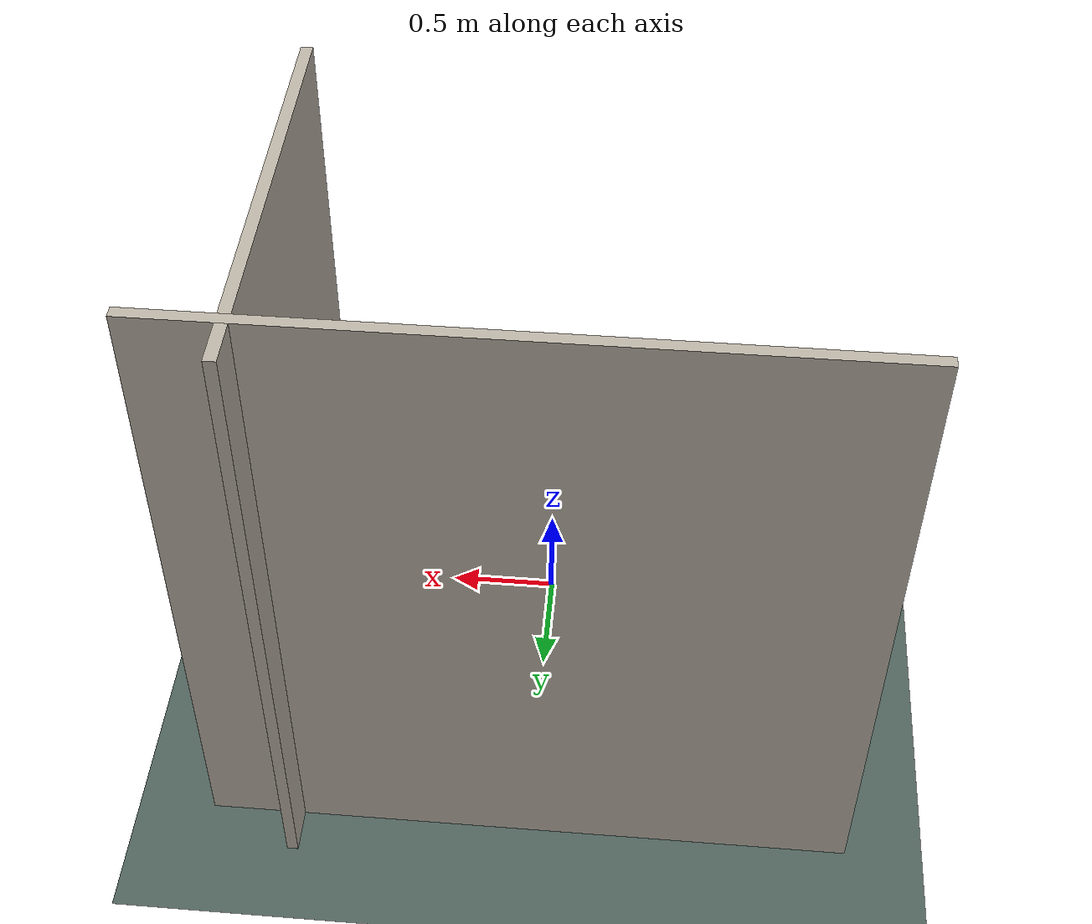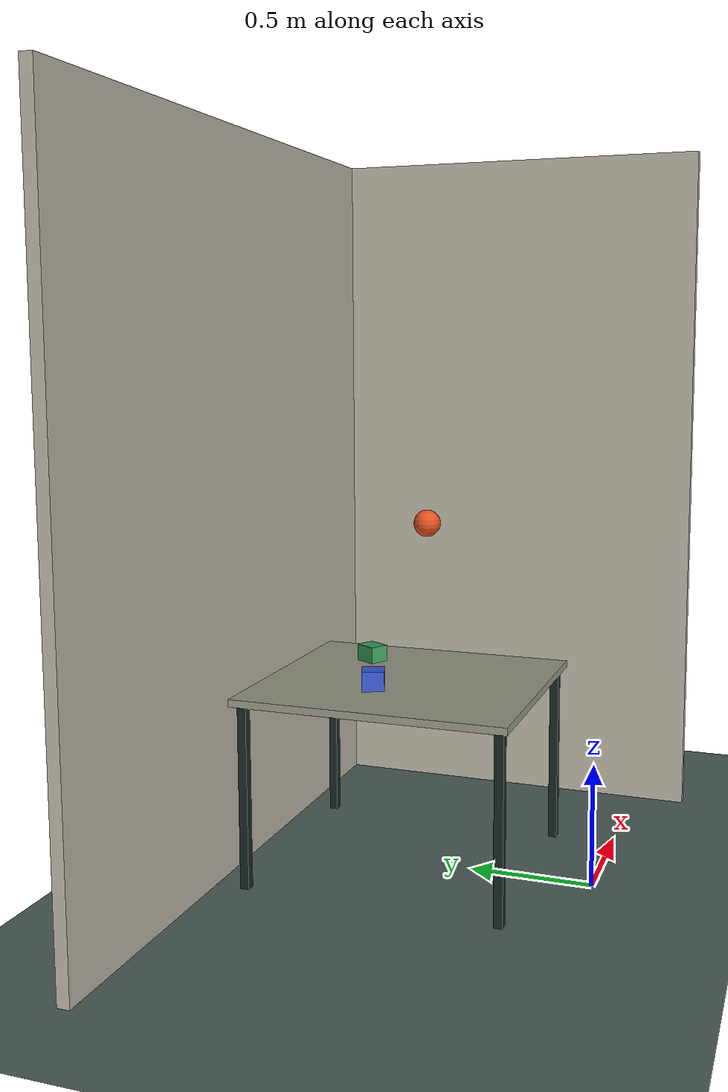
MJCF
<mujoco model="nelif_table_ball_drop">
  <compiler angle="radian" autolimits="true"/>
  <option timestep="0.005" gravity="0 0 -9.81"/>

  <visual>
    <global offwidth="512" offheight="512"/>
    <quality shadowsize="2048" offsamples="0"/>
    <headlight ambient="0 0 0" diffuse="0 0 0" specular="0 0 0"/>
    <map znear="0.01" zfar="20"/>
  </visual>

  <asset>
    <material name="floor" rgba="0.31 0.38 0.36 1" specular="0.10" shininess="0.25"/>
    <material name="wall" rgba="0.73 0.70 0.65 1" specular="0.10" shininess="0.25"/>
    <material name="table" rgba="0.58 0.60 0.52 1" specular="0.12" shininess="0.30"/>
    <material name="dark" rgba="0.09 0.15 0.14 1" specular="0.22" shininess="0.35"/>
    <material name="ball" rgba="0.90 0.32 0.12 1" specular="0.28" shininess="0.55"/>
    <material name="blue" rgba="0.22 0.35 0.82 1" specular="0.18" shininess="0.42"/>
    <material name="green" rgba="0.22 0.62 0.36 1" specular="0.16" shininess="0.36"/>
  </asset>

  <worldbody>
    <camera name="nelif_fixed_cam" mode="fixed" pos="-1.65 0.52 1.65"
            xyaxes="0.19 -0.982 0 0.38 0.073 0.922" fovy="68"/>
    <light name="nelif_key_light" mode="fixed" type="point" castshadow="true"
           pos="-0.55 0.95 2.45" dir="0.28 -0.12 -0.95"
           diffuse="0.94 0.91 0.88" specular="0.45 0.45 0.45"
           intensity="0.95" bulbradius="0.22" cutoff="55"/>

    <geom name="floor" type="plane" pos="0 0 0" size="3 3 0.02" material="floor"/>
    <geom name="back_wall" type="box" pos="0 1.45 1.5" size="1.45 0.025 1.5" material="wall"/>
    <geom name="right_wall" type="box" pos="1.05 0.72 1.5" size="0.025 0.95 1.5" material="wall"/>
    <geom name="table_top" type="box" pos="0 0.78 0.765" size="0.50 0.56 0.015" material="table"/>
    <geom name="table_leg_00" type="box" pos="-0.45 0.26 0.375" size="0.018 0.018 0.375" material="dark"/>
    <geom name="table_leg_01" type="box" pos="-0.45 1.30 0.375" size="0.018 0.018 0.375" material="dark"/>
    <geom name="table_leg_10" type="box" pos="0.45 0.26 0.375" size="0.018 0.018 0.375" material="dark"/>
    <geom name="table_leg_11" type="box" pos="0.45 1.30 0.375" size="0.018 0.018 0.375" material="dark"/>
    <geom name="blue_block" type="box" pos="-0.18 0.86 0.82" size="0.045 0.045 0.04" material="blue" quat="0.985 0 0 0.174"/>
    <geom name="green_block" type="box" pos="0.22 1.02 0.82" size="0.04 0.05 0.035" material="green" quat="0.966 0 0 -0.259"/>

    <body name="falling_ball" pos="0.08 0.72 1.42">
      <freejoint/>
      <geom name="falling_ball_geom" type="sphere" size="0.055" material="ball" mass="0.08"/>
    </body>
  </worldbody>
</mujoco>
